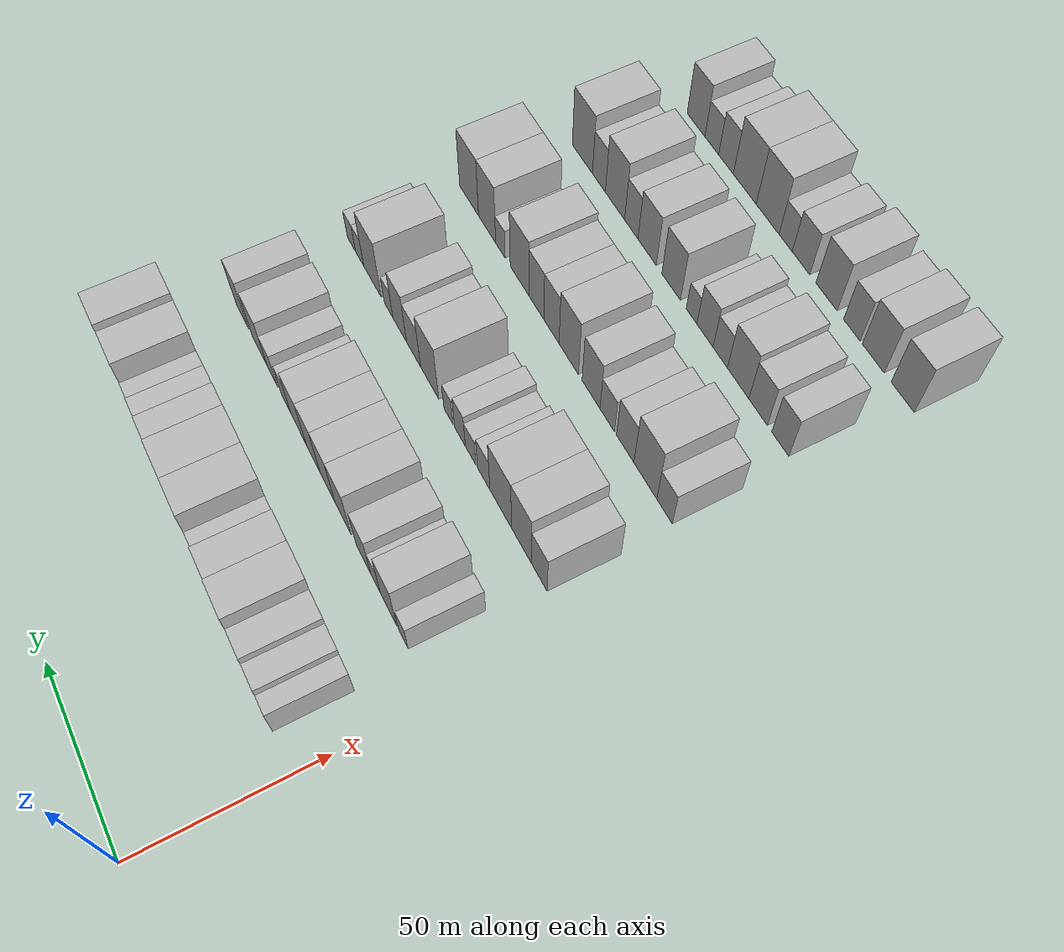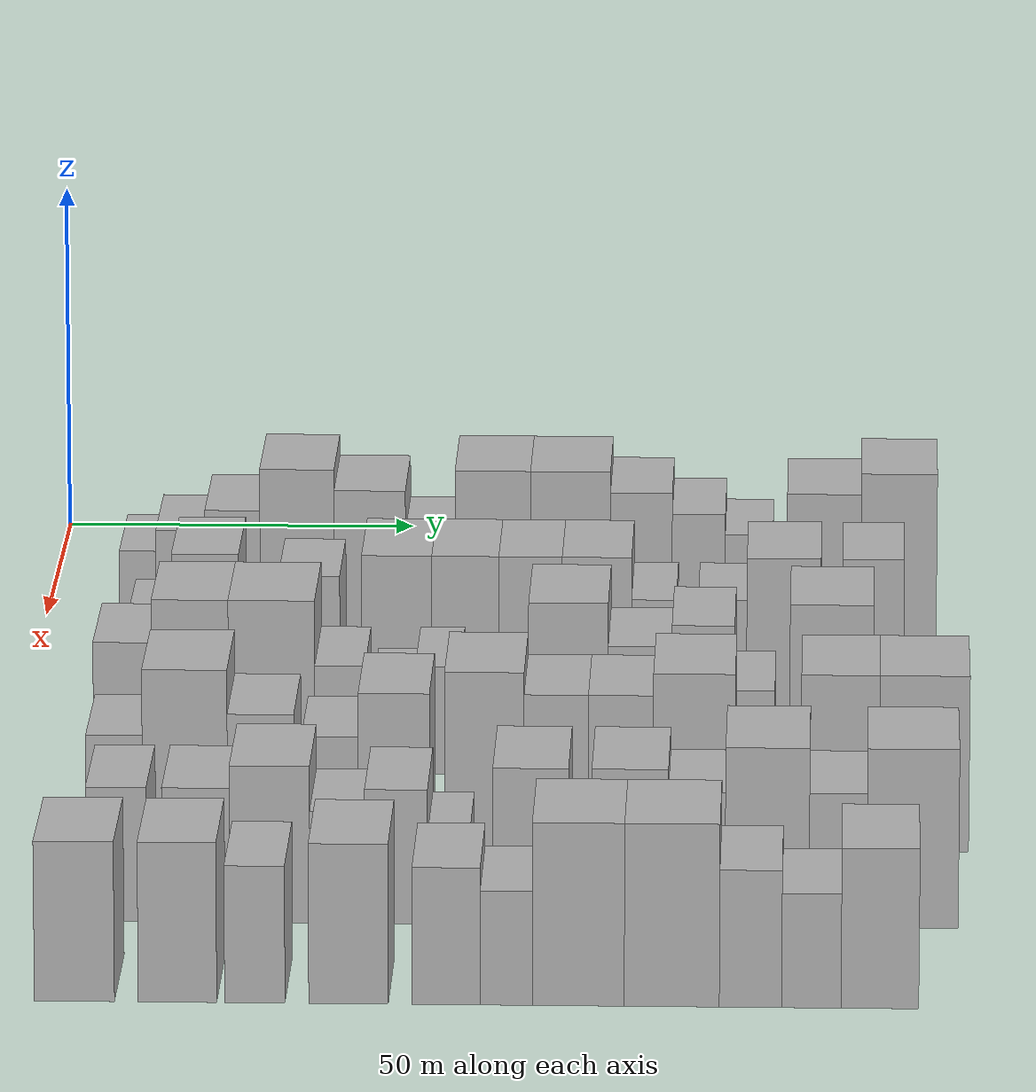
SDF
<sdf version="1.6">
 <world name="default">
  <model name="building_66">
   <static>1</static>
   <pose>50.0000 13.4667 0 0.000000 0.000000 0.000000</pose>
   <link name="link">
    <pose>0 0 6.00 0 0 0</pose>
    <collision name="collision"><geometry><box><size>20.0000 5.1343 12.0000</size></box></geometry></collision>
    <visual name="visual">
     <cast_shadows>0</cast_shadows>
     <geometry><box><size>20.0000 5.1343 12.0000</size></box></geometry>
     <material>
      <script>
       <uri>model://HANNAS_wall/materials/scripts</uri>
       <uri>model://HANNAS_wall/materials/textures</uri>
       <name>vrc/HANNAS_wall</name>
      </script>
     </material>
    </visual>
   </link>
  </model>
  <model name="building_67">
   <static>1</static>
   <pose>50.0000 19.4981 0 0.000000 0.000000 0.000000</pose>
   <link name="link">
    <pose>0 0 7.50 0 0 0</pose>
    <collision name="collision"><geometry><box><size>20.0000 6.9286 15.0000</size></box></geometry></collision>
    <visual name="visual">
     <cast_shadows>0</cast_shadows>
     <geometry><box><size>20.0000 6.9286 15.0000</size></box></geometry>
     <material>
      <script>
       <uri>model://HANNAS_wall/materials/scripts</uri>
       <uri>model://HANNAS_wall/materials/textures</uri>
       <name>vrc/HANNAS_wall</name>
      </script>
     </material>
    </visual>
   </link>
  </model>
  <model name="building_68">
   <static>1</static>
   <pose>50.0000 26.8272 0 0.000000 0.000000 0.000000</pose>
   <link name="link">
    <pose>0 0 9.00 0 0 0</pose>
    <collision name="collision"><geometry><box><size>20.0000 7.7295 18.0000</size></box></geometry></collision>
    <visual name="visual">
     <cast_shadows>0</cast_shadows>
     <geometry><box><size>20.0000 7.7295 18.0000</size></box></geometry>
     <material>
      <script>
       <uri>model://HANNAS_wall/materials/scripts</uri>
       <uri>model://HANNAS_wall/materials/textures</uri>
       <name>vrc/HANNAS_wall</name>
      </script>
     </material>
    </visual>
   </link>
  </model>
  <model name="building_69">
   <static>1</static>
   <pose>50.0000 35.9071 0 0.000000 0.000000 0.000000</pose>
   <link name="link">
    <pose>0 0 12.00 0 0 0</pose>
    <collision name="collision"><geometry><box><size>20.0000 10.4304 24.0000</size></box></geometry></collision>
    <visual name="visual">
     <cast_shadows>0</cast_shadows>
     <geometry><box><size>20.0000 10.4304 24.0000</size></box></geometry>
     <material>
      <script>
       <uri>model://HANNAS_wall/materials/scripts</uri>
       <uri>model://HANNAS_wall/materials/textures</uri>
       <name>vrc/HANNAS_wall</name>
      </script>
     </material>
    </visual>
   </link>
  </model>
  <model name="building_70">
   <static>1</static>
   <pose>50.0000 46.1230 0 0.000000 0.000000 0.000000</pose>
   <link name="link">
    <pose>0 0 10.50 0 0 0</pose>
    <collision name="collision"><geometry><box><size>20.0000 10.0013 21.0000</size></box></geometry></collision>
    <visual name="visual">
     <cast_shadows>0</cast_shadows>
     <geometry><box><size>20.0000 10.0013 21.0000</size></box></geometry>
     <material>
      <script>
       <uri>model://HANNAS_wall/materials/scripts</uri>
       <uri>model://HANNAS_wall/materials/textures</uri>
       <name>vrc/HANNAS_wall</name>
      </script>
     </material>
    </visual>
   </link>
  </model>
  <model name="building_71">
   <static>1</static>
   <pose>50.0000 54.6129 0 0.000000 0.000000 0.000000</pose>
   <link name="link">
    <pose>0 0 7.50 0 0 0</pose>
    <collision name="collision"><geometry><box><size>20.0000 6.9785 15.0000</size></box></geometry></collision>
    <visual name="visual">
     <cast_shadows>0</cast_shadows>
     <geometry><box><size>20.0000 6.9785 15.0000</size></box></geometry>
     <material>
      <script>
       <uri>model://HANNAS_wall/materials/scripts</uri>
       <uri>model://HANNAS_wall/materials/textures</uri>
       <name>vrc/HANNAS_wall</name>
      </script>
     </material>
    </visual>
   </link>
  </model>
  <model name="building_72">
   <static>1</static>
   <pose>50.0000 63.3896 0 0.000000 0.000000 0.000000</pose>
   <link name="link">
    <pose>0 0 12.00 0 0 0</pose>
    <collision name="collision"><geometry><box><size>20.0000 10.5749 24.0000</size></box></geometry></collision>
    <visual name="visual">
     <cast_shadows>0</cast_shadows>
     <geometry><box><size>20.0000 10.5749 24.0000</size></box></geometry>
     <material>
      <script>
       <uri>model://HANNAS_wall/materials/scripts</uri>
       <uri>model://HANNAS_wall/materials/textures</uri>
       <name>vrc/HANNAS_wall</name>
      </script>
     </material>
    </visual>
   </link>
  </model>
  <model name="building_73">
   <static>1</static>
   <pose>50.0000 74.2864 0 0.000000 0.000000 0.000000</pose>
   <link name="link">
    <pose>0 0 12.00 0 0 0</pose>
    <collision name="collision"><geometry><box><size>20.0000 11.2187 24.0000</size></box></geometry></collision>
    <visual name="visual">
     <cast_shadows>0</cast_shadows>
     <geometry><box><size>20.0000 11.2187 24.0000</size></box></geometry>
     <material>
      <script>
       <uri>model://HANNAS_wall/materials/scripts</uri>
       <uri>model://HANNAS_wall/materials/textures</uri>
       <name>vrc/HANNAS_wall</name>
      </script>
     </material>
    </visual>
   </link>
  </model>
  <model name="building_74">
   <static>1</static>
   <pose>50.0000 84.2285 0 0.000000 0.000000 0.000000</pose>
   <link name="link">
    <pose>0 0 10.50 0 0 0</pose>
    <collision name="collision"><geometry><box><size>20.0000 8.6655 21.0000</size></box></geometry></collision>
    <visual name="visual">
     <cast_shadows>0</cast_shadows>
     <geometry><box><size>20.0000 8.6655 21.0000</size></box></geometry>
     <material>
      <script>
       <uri>model://HANNAS_wall/materials/scripts</uri>
       <uri>model://HANNAS_wall/materials/textures</uri>
       <name>vrc/HANNAS_wall</name>
      </script>
     </material>
    </visual>
   </link>
  </model>
  <model name="building_75">
   <static>1</static>
   <pose>50.0000 92.2846 0 0.000000 0.000000 0.000000</pose>
   <link name="link">
    <pose>0 0 9.00 0 0 0</pose>
    <collision name="collision"><geometry><box><size>20.0000 7.4467 18.0000</size></box></geometry></collision>
    <visual name="visual">
     <cast_shadows>0</cast_shadows>
     <geometry><box><size>20.0000 7.4467 18.0000</size></box></geometry>
     <material>
      <script>
       <uri>model://HANNAS_wall/materials/scripts</uri>
       <uri>model://HANNAS_wall/materials/textures</uri>
       <name>vrc/HANNAS_wall</name>
      </script>
     </material>
    </visual>
   </link>
  </model>
  <model name="building_76">
   <static>1</static>
   <pose>50.0000 99.3456 0 0.000000 0.000000 0.000000</pose>
   <link name="link">
    <pose>0 0 7.50 0 0 0</pose>
    <collision name="collision"><geometry><box><size>20.0000 6.6754 15.0000</size></box></geometry></collision>
    <visual name="visual">
     <cast_shadows>0</cast_shadows>
     <geometry><box><size>20.0000 6.6754 15.0000</size></box></geometry>
     <material>
      <script>
       <uri>model://HANNAS_wall/materials/scripts</uri>
       <uri>model://HANNAS_wall/materials/textures</uri>
       <name>vrc/HANNAS_wall</name>
      </script>
     </material>
    </visual>
   </link>
  </model>
  <model name="building_77">
   <static>1</static>
   <pose>50.0000 109.8827 0 0.000000 0.000000 0.000000</pose>
   <link name="link">
    <pose>0 0 10.50 0 0 0</pose>
    <collision name="collision"><geometry><box><size>20.0000 10.3987 21.0000</size></box></geometry></collision>
    <visual name="visual">
     <cast_shadows>0</cast_shadows>
     <geometry><box><size>20.0000 10.3987 21.0000</size></box></geometry>
     <material>
      <script>
       <uri>model://HANNAS_wall/materials/scripts</uri>
       <uri>model://HANNAS_wall/materials/textures</uri>
       <name>vrc/HANNAS_wall</name>
      </script>
     </material>
    </visual>
   </link>
  </model>
  <model name="building_78">
   <static>1</static>
   <pose>50.0000 120.3677 0 0.000000 0.000000 0.000000</pose>
   <link name="link">
    <pose>0 0 12.00 0 0 0</pose>
    <collision name="collision"><geometry><box><size>20.0000 10.5713 24.0000</size></box></geometry></collision>
    <visual name="visual">
     <cast_shadows>0</cast_shadows>
     <geometry><box><size>20.0000 10.5713 24.0000</size></box></geometry>
     <material>
      <script>
       <uri>model://HANNAS_wall/materials/scripts</uri>
       <uri>model://HANNAS_wall/materials/textures</uri>
       <name>vrc/HANNAS_wall</name>
      </script>
     </material>
    </visual>
   </link>
  </model>
  <model name="building_190">
   <static>1</static>
   <pose>85.0000 16.7257 0 0.000000 0.000000 0.000000</pose>
   <link name="link">
    <pose>0 0 6.00 0 0 0</pose>
    <collision name="collision"><geometry><box><size>20.0000 5.0994 12.0000</size></box></geometry></collision>
    <visual name="visual">
     <cast_shadows>0</cast_shadows>
     <geometry><box><size>20.0000 5.0994 12.0000</size></box></geometry>
     <material>
      <script>
       <uri>model://HANNAS_wall/materials/scripts</uri>
       <uri>model://HANNAS_wall/materials/textures</uri>
       <name>vrc/HANNAS_wall</name>
      </script>
     </material>
    </visual>
   </link>
  </model>
  <model name="building_191">
   <static>1</static>
   <pose>85.0000 24.8939 0 0.000000 0.000000 0.000000</pose>
   <link name="link">
    <pose>0 0 10.50 0 0 0</pose>
    <collision name="collision"><geometry><box><size>20.0000 9.2371 21.0000</size></box></geometry></collision>
    <visual name="visual">
     <cast_shadows>0</cast_shadows>
     <geometry><box><size>20.0000 9.2371 21.0000</size></box></geometry>
     <material>
      <script>
       <uri>model://HANNAS_wall/materials/scripts</uri>
       <uri>model://HANNAS_wall/materials/textures</uri>
       <name>vrc/HANNAS_wall</name>
      </script>
     </material>
    </visual>
   </link>
  </model>
  <model name="building_192">
   <static>1</static>
   <pose>85.0000 32.2383 0 0.000000 0.000000 0.000000</pose>
   <link name="link">
    <pose>0 0 6.00 0 0 0</pose>
    <collision name="collision"><geometry><box><size>20.0000 5.4516 12.0000</size></box></geometry></collision>
    <visual name="visual">
     <cast_shadows>0</cast_shadows>
     <geometry><box><size>20.0000 5.4516 12.0000</size></box></geometry>
     <material>
      <script>
       <uri>model://HANNAS_wall/materials/scripts</uri>
       <uri>model://HANNAS_wall/materials/textures</uri>
       <name>vrc/HANNAS_wall</name>
      </script>
     </material>
    </visual>
   </link>
  </model>
  <model name="building_193">
   <static>1</static>
   <pose>85.0000 39.1907 0 0.000000 0.000000 0.000000</pose>
   <link name="link">
    <pose>0 0 9.00 0 0 0</pose>
    <collision name="collision"><geometry><box><size>20.0000 8.4532 18.0000</size></box></geometry></collision>
    <visual name="visual">
     <cast_shadows>0</cast_shadows>
     <geometry><box><size>20.0000 8.4532 18.0000</size></box></geometry>
     <material>
      <script>
       <uri>model://HANNAS_wall/materials/scripts</uri>
       <uri>model://HANNAS_wall/materials/textures</uri>
       <name>vrc/HANNAS_wall</name>
      </script>
     </material>
    </visual>
   </link>
  </model>
  <model name="building_194">
   <static>1</static>
   <pose>85.0000 51.2417 0 0.000000 0.000000 0.000000</pose>
   <link name="link">
    <pose>0 0 10.50 0 0 0</pose>
    <collision name="collision"><geometry><box><size>20.0000 9.6488 21.0000</size></box></geometry></collision>
    <visual name="visual">
     <cast_shadows>0</cast_shadows>
     <geometry><box><size>20.0000 9.6488 21.0000</size></box></geometry>
     <material>
      <script>
       <uri>model://HANNAS_wall/materials/scripts</uri>
       <uri>model://HANNAS_wall/materials/textures</uri>
       <name>vrc/HANNAS_wall</name>
      </script>
     </material>
    </visual>
   </link>
  </model>
  <model name="building_195">
   <static>1</static>
   <pose>85.0000 60.6715 0 0.000000 0.000000 0.000000</pose>
   <link name="link">
    <pose>0 0 10.50 0 0 0</pose>
    <collision name="collision"><geometry><box><size>20.0000 9.2108 21.0000</size></box></geometry></collision>
    <visual name="visual">
     <cast_shadows>0</cast_shadows>
     <geometry><box><size>20.0000 9.2108 21.0000</size></box></geometry>
     <material>
      <script>
       <uri>model://HANNAS_wall/materials/scripts</uri>
       <uri>model://HANNAS_wall/materials/textures</uri>
       <name>vrc/HANNAS_wall</name>
      </script>
     </material>
    </visual>
   </link>
  </model>
  <model name="building_196">
   <static>1</static>
   <pose>85.0000 69.6361 0 0.000000 0.000000 0.000000</pose>
   <link name="link">
    <pose>0 0 10.50 0 0 0</pose>
    <collision name="collision"><geometry><box><size>20.0000 8.7184 21.0000</size></box></geometry></collision>
    <visual name="visual">
     <cast_shadows>0</cast_shadows>
     <geometry><box><size>20.0000 8.7184 21.0000</size></box></geometry>
     <material>
      <script>
       <uri>model://HANNAS_wall/materials/scripts</uri>
       <uri>model://HANNAS_wall/materials/textures</uri>
       <name>vrc/HANNAS_wall</name>
      </script>
     </material>
    </visual>
   </link>
  </model>
  <model name="building_197">
   <static>1</static>
   <pose>85.0000 78.7616 0 0.000000 0.000000 0.000000</pose>
   <link name="link">
    <pose>0 0 10.50 0 0 0</pose>
    <collision name="collision"><geometry><box><size>20.0000 9.5325 21.0000</size></box></geometry></collision>
    <visual name="visual">
     <cast_shadows>0</cast_shadows>
     <geometry><box><size>20.0000 9.5325 21.0000</size></box></geometry>
     <material>
      <script>
       <uri>model://HANNAS_wall/materials/scripts</uri>
       <uri>model://HANNAS_wall/materials/textures</uri>
       <name>vrc/HANNAS_wall</name>
      </script>
     </material>
    </visual>
   </link>
  </model>
  <model name="building_198">
   <static>1</static>
   <pose>85.0000 86.6030 0 0.000000 0.000000 0.000000</pose>
   <link name="link">
    <pose>0 0 7.50 0 0 0</pose>
    <collision name="collision"><geometry><box><size>20.0000 6.1503 15.0000</size></box></geometry></collision>
    <visual name="visual">
     <cast_shadows>0</cast_shadows>
     <geometry><box><size>20.0000 6.1503 15.0000</size></box></geometry>
     <material>
      <script>
       <uri>model://HANNAS_wall/materials/scripts</uri>
       <uri>model://HANNAS_wall/materials/textures</uri>
       <name>vrc/HANNAS_wall</name>
      </script>
     </material>
    </visual>
   </link>
  </model>
  <model name="building_199">
   <static>1</static>
   <pose>85.0000 96.0213 0 0.000000 0.000000 0.000000</pose>
   <link name="link">
    <pose>0 0 7.50 0 0 0</pose>
    <collision name="collision"><geometry><box><size>20.0000 6.6864 15.0000</size></box></geometry></collision>
    <visual name="visual">
     <cast_shadows>0</cast_shadows>
     <geometry><box><size>20.0000 6.6864 15.0000</size></box></geometry>
     <material>
      <script>
       <uri>model://HANNAS_wall/materials/scripts</uri>
       <uri>model://HANNAS_wall/materials/textures</uri>
       <name>vrc/HANNAS_wall</name>
      </script>
     </material>
    </visual>
   </link>
  </model>
  <model name="building_200">
   <static>1</static>
   <pose>85.0000 104.4423 0 0.000000 0.000000 0.000000</pose>
   <link name="link">
    <pose>0 0 10.50 0 0 0</pose>
    <collision name="collision"><geometry><box><size>20.0000 10.1555 21.0000</size></box></geometry></collision>
    <visual name="visual">
     <cast_shadows>0</cast_shadows>
     <geometry><box><size>20.0000 10.1555 21.0000</size></box></geometry>
     <material>
      <script>
       <uri>model://HANNAS_wall/materials/scripts</uri>
       <uri>model://HANNAS_wall/materials/textures</uri>
       <name>vrc/HANNAS_wall</name>
      </script>
     </material>
    </visual>
   </link>
  </model>
  <model name="building_201">
   <static>1</static>
   <pose>85.0000 116.7244 0 0.000000 0.000000 0.000000</pose>
   <link name="link">
    <pose>0 0 10.50 0 0 0</pose>
    <collision name="collision"><geometry><box><size>20.0000 8.4089 21.0000</size></box></geometry></collision>
    <visual name="visual">
     <cast_shadows>0</cast_shadows>
     <geometry><box><size>20.0000 8.4089 21.0000</size></box></geometry>
     <material>
      <script>
       <uri>model://HANNAS_wall/materials/scripts</uri>
       <uri>model://HANNAS_wall/materials/textures</uri>
       <name>vrc/HANNAS_wall</name>
      </script>
     </material>
    </visual>
   </link>
  </model>
  <model name="building_315">
   <static>1</static>
   <pose>120.0000 15.6466 0 0.000000 0.000000 0.000000</pose>
   <link name="link">
    <pose>0 0 9.00 0 0 0</pose>
    <collision name="collision"><geometry><box><size>20.0000 7.9000 18.0000</size></box></geometry></collision>
    <visual name="visual">
     <cast_shadows>0</cast_shadows>
     <geometry><box><size>20.0000 7.9000 18.0000</size></box></geometry>
     <material>
      <script>
       <uri>model://HANNAS_wall/materials/scripts</uri>
       <uri>model://HANNAS_wall/materials/textures</uri>
       <name>vrc/HANNAS_wall</name>
      </script>
     </material>
    </visual>
   </link>
  </model>
  <model name="building_316">
   <static>1</static>
   <pose>120.0000 24.7605 0 0.000000 0.000000 0.000000</pose>
   <link name="link">
    <pose>0 0 12.00 0 0 0</pose>
    <collision name="collision"><geometry><box><size>20.0000 10.3277 24.0000</size></box></geometry></collision>
    <visual name="visual">
     <cast_shadows>0</cast_shadows>
     <geometry><box><size>20.0000 10.3277 24.0000</size></box></geometry>
     <material>
      <script>
       <uri>model://HANNAS_wall/materials/scripts</uri>
       <uri>model://HANNAS_wall/materials/textures</uri>
       <name>vrc/HANNAS_wall</name>
      </script>
     </material>
    </visual>
   </link>
  </model>
  <model name="building_317">
   <static>1</static>
   <pose>120.0000 35.7456 0 0.000000 0.000000 0.000000</pose>
   <link name="link">
    <pose>0 0 12.00 0 0 0</pose>
    <collision name="collision"><geometry><box><size>20.0000 11.6427 24.0000</size></box></geometry></collision>
    <visual name="visual">
     <cast_shadows>0</cast_shadows>
     <geometry><box><size>20.0000 11.6427 24.0000</size></box></geometry>
     <material>
      <script>
       <uri>model://HANNAS_wall/materials/scripts</uri>
       <uri>model://HANNAS_wall/materials/textures</uri>
       <name>vrc/HANNAS_wall</name>
      </script>
     </material>
    </visual>
   </link>
  </model>
  <model name="building_318">
   <static>1</static>
   <pose>120.0000 44.9583 0 0.000000 0.000000 0.000000</pose>
   <link name="link">
    <pose>0 0 7.50 0 0 0</pose>
    <collision name="collision"><geometry><box><size>20.0000 6.7827 15.0000</size></box></geometry></collision>
    <visual name="visual">
     <cast_shadows>0</cast_shadows>
     <geometry><box><size>20.0000 6.7827 15.0000</size></box></geometry>
     <material>
      <script>
       <uri>model://HANNAS_wall/materials/scripts</uri>
       <uri>model://HANNAS_wall/materials/textures</uri>
       <name>vrc/HANNAS_wall</name>
      </script>
     </material>
    </visual>
   </link>
  </model>
  <model name="building_319">
   <static>1</static>
   <pose>120.0000 52.2283 0 0.000000 0.000000 0.000000</pose>
   <link name="link">
    <pose>0 0 6.00 0 0 0</pose>
    <collision name="collision"><geometry><box><size>20.0000 5.7573 12.0000</size></box></geometry></collision>
    <visual name="visual">
     <cast_shadows>0</cast_shadows>
     <geometry><box><size>20.0000 5.7573 12.0000</size></box></geometry>
     <material>
      <script>
       <uri>model://HANNAS_wall/materials/scripts</uri>
       <uri>model://HANNAS_wall/materials/textures</uri>
       <name>vrc/HANNAS_wall</name>
      </script>
     </material>
    </visual>
   </link>
  </model>
  <model name="building_320">
   <static>1</static>
   <pose>120.0000 58.1270 0 0.000000 0.000000 0.000000</pose>
   <link name="link">
    <pose>0 0 7.50 0 0 0</pose>
    <collision name="collision"><geometry><box><size>20.0000 6.0401 15.0000</size></box></geometry></collision>
    <visual name="visual">
     <cast_shadows>0</cast_shadows>
     <geometry><box><size>20.0000 6.0401 15.0000</size></box></geometry>
     <material>
      <script>
       <uri>model://HANNAS_wall/materials/scripts</uri>
       <uri>model://HANNAS_wall/materials/textures</uri>
       <name>vrc/HANNAS_wall</name>
      </script>
     </material>
    </visual>
   </link>
  </model>
  <model name="building_321">
   <static>1</static>
   <pose>120.0000 64.7448 0 0.000000 0.000000 0.000000</pose>
   <link name="link">
    <pose>0 0 6.00 0 0 0</pose>
    <collision name="collision"><geometry><box><size>20.0000 5.1953 12.0000</size></box></geometry></collision>
    <visual name="visual">
     <cast_shadows>0</cast_shadows>
     <geometry><box><size>20.0000 5.1953 12.0000</size></box></geometry>
     <material>
      <script>
       <uri>model://HANNAS_wall/materials/scripts</uri>
       <uri>model://HANNAS_wall/materials/textures</uri>
       <name>vrc/HANNAS_wall</name>
      </script>
     </material>
    </visual>
   </link>
  </model>
  <model name="building_322">
   <static>1</static>
   <pose>120.0000 75.6926 0 0.000000 0.000000 0.000000</pose>
   <link name="link">
    <pose>0 0 12.00 0 0 0</pose>
    <collision name="collision"><geometry><box><size>20.0000 10.7003 24.0000</size></box></geometry></collision>
    <visual name="visual">
     <cast_shadows>0</cast_shadows>
     <geometry><box><size>20.0000 10.7003 24.0000</size></box></geometry>
     <material>
      <script>
       <uri>model://HANNAS_wall/materials/scripts</uri>
       <uri>model://HANNAS_wall/materials/textures</uri>
       <name>vrc/HANNAS_wall</name>
      </script>
     </material>
    </visual>
   </link>
  </model>
  <model name="building_323">
   <static>1</static>
   <pose>120.0000 85.3341 0 0.000000 0.000000 0.000000</pose>
   <link name="link">
    <pose>0 0 9.00 0 0 0</pose>
    <collision name="collision"><geometry><box><size>20.0000 8.5829 18.0000</size></box></geometry></collision>
    <visual name="visual">
     <cast_shadows>0</cast_shadows>
     <geometry><box><size>20.0000 8.5829 18.0000</size></box></geometry>
     <material>
      <script>
       <uri>model://HANNAS_wall/materials/scripts</uri>
       <uri>model://HANNAS_wall/materials/textures</uri>
       <name>vrc/HANNAS_wall</name>
      </script>
     </material>
    </visual>
   </link>
  </model>
  <model name="building_324">
   <static>1</static>
   <pose>120.0000 93.8354 0 0.000000 0.000000 0.000000</pose>
   <link name="link">
    <pose>0 0 10.50 0 0 0</pose>
    <collision name="collision"><geometry><box><size>20.0000 8.4196 21.0000</size></box></geometry></collision>
    <visual name="visual">
     <cast_shadows>0</cast_shadows>
     <geometry><box><size>20.0000 8.4196 21.0000</size></box></geometry>
     <material>
      <script>
       <uri>model://HANNAS_wall/materials/scripts</uri>
       <uri>model://HANNAS_wall/materials/textures</uri>
       <name>vrc/HANNAS_wall</name>
      </script>
     </material>
    </visual>
   </link>
  </model>
  <model name="building_325">
   <static>1</static>
   <pose>120.0000 100.7578 0 0.000000 0.000000 0.000000</pose>
   <link name="link">
    <pose>0 0 6.00 0 0 0</pose>
    <collision name="collision"><geometry><box><size>20.0000 5.4252 12.0000</size></box></geometry></collision>
    <visual name="visual">
     <cast_shadows>0</cast_shadows>
     <geometry><box><size>20.0000 5.4252 12.0000</size></box></geometry>
     <material>
      <script>
       <uri>model://HANNAS_wall/materials/scripts</uri>
       <uri>model://HANNAS_wall/materials/textures</uri>
       <name>vrc/HANNAS_wall</name>
      </script>
     </material>
    </visual>
   </link>
  </model>
  <model name="building_326">
   <static>1</static>
   <pose>120.0000 111.0955 0 0.000000 0.000000 0.000000</pose>
   <link name="link">
    <pose>0 0 12.00 0 0 0</pose>
    <collision name="collision"><geometry><box><size>20.0000 11.2502 24.0000</size></box></geometry></collision>
    <visual name="visual">
     <cast_shadows>0</cast_shadows>
     <geometry><box><size>20.0000 11.2502 24.0000</size></box></geometry>
     <material>
      <script>
       <uri>model://HANNAS_wall/materials/scripts</uri>
       <uri>model://HANNAS_wall/materials/textures</uri>
       <name>vrc/HANNAS_wall</name>
      </script>
     </material>
    </visual>
   </link>
  </model>
  <model name="building_327">
   <static>1</static>
   <pose>120.0000 119.4386 0 0.000000 0.000000 0.000000</pose>
   <link name="link">
    <pose>0 0 6.00 0 0 0</pose>
    <collision name="collision"><geometry><box><size>20.0000 5.4361 12.0000</size></box></geometry></collision>
    <visual name="visual">
     <cast_shadows>0</cast_shadows>
     <geometry><box><size>20.0000 5.4361 12.0000</size></box></geometry>
     <material>
      <script>
       <uri>model://HANNAS_wall/materials/scripts</uri>
       <uri>model://HANNAS_wall/materials/textures</uri>
       <name>vrc/HANNAS_wall</name>
      </script>
     </material>
    </visual>
   </link>
  </model>
  <model name="building_328">
   <static>1</static>
   <pose>120.0000 124.8402 0 0.000000 0.000000 0.000000</pose>
   <link name="link">
    <pose>0 0 6.00 0 0 0</pose>
    <collision name="collision"><geometry><box><size>20.0000 5.3671 12.0000</size></box></geometry></collision>
    <visual name="visual">
     <cast_shadows>0</cast_shadows>
     <geometry><box><size>20.0000 5.3671 12.0000</size></box></geometry>
     <material>
      <script>
       <uri>model://HANNAS_wall/materials/scripts</uri>
       <uri>model://HANNAS_wall/materials/textures</uri>
       <name>vrc/HANNAS_wall</name>
      </script>
     </material>
    </visual>
   </link>
  </model>
  <model name="building_444">
   <static>1</static>
   <pose>155.0000 16.6789 0 0.000000 0.000000 0.000000</pose>
   <link name="link">
    <pose>0 0 7.50 0 0 0</pose>
    <collision name="collision"><geometry><box><size>20.0000 7.4378 15.0000</size></box></geometry></collision>
    <visual name="visual">
     <cast_shadows>0</cast_shadows>
     <geometry><box><size>20.0000 7.4378 15.0000</size></box></geometry>
     <material>
      <script>
       <uri>model://HANNAS_wall/materials/scripts</uri>
       <uri>model://HANNAS_wall/materials/textures</uri>
       <name>vrc/HANNAS_wall</name>
      </script>
     </material>
    </visual>
   </link>
  </model>
  <model name="building_445">
   <static>1</static>
   <pose>155.0000 26.0057 0 0.000000 0.000000 0.000000</pose>
   <link name="link">
    <pose>0 0 12.00 0 0 0</pose>
    <collision name="collision"><geometry><box><size>20.0000 11.2159 24.0000</size></box></geometry></collision>
    <visual name="visual">
     <cast_shadows>0</cast_shadows>
     <geometry><box><size>20.0000 11.2159 24.0000</size></box></geometry>
     <material>
      <script>
       <uri>model://HANNAS_wall/materials/scripts</uri>
       <uri>model://HANNAS_wall/materials/textures</uri>
       <name>vrc/HANNAS_wall</name>
      </script>
     </material>
    </visual>
   </link>
  </model>
  <model name="building_446">
   <static>1</static>
   <pose>155.0000 36.0008 0 0.000000 0.000000 0.000000</pose>
   <link name="link">
    <pose>0 0 9.00 0 0 0</pose>
    <collision name="collision"><geometry><box><size>20.0000 8.7744 18.0000</size></box></geometry></collision>
    <visual name="visual">
     <cast_shadows>0</cast_shadows>
     <geometry><box><size>20.0000 8.7744 18.0000</size></box></geometry>
     <material>
      <script>
       <uri>model://HANNAS_wall/materials/scripts</uri>
       <uri>model://HANNAS_wall/materials/textures</uri>
       <name>vrc/HANNAS_wall</name>
      </script>
     </material>
    </visual>
   </link>
  </model>
  <model name="building_447">
   <static>1</static>
   <pose>155.0000 45.1333 0 0.000000 0.000000 0.000000</pose>
   <link name="link">
    <pose>0 0 7.50 0 0 0</pose>
    <collision name="collision"><geometry><box><size>20.0000 7.4905 15.0000</size></box></geometry></collision>
    <visual name="visual">
     <cast_shadows>0</cast_shadows>
     <geometry><box><size>20.0000 7.4905 15.0000</size></box></geometry>
     <material>
      <script>
       <uri>model://HANNAS_wall/materials/scripts</uri>
       <uri>model://HANNAS_wall/materials/textures</uri>
       <name>vrc/HANNAS_wall</name>
      </script>
     </material>
    </visual>
   </link>
  </model>
  <model name="building_448">
   <static>1</static>
   <pose>155.0000 53.5653 0 0.000000 0.000000 0.000000</pose>
   <link name="link">
    <pose>0 0 10.50 0 0 0</pose>
    <collision name="collision"><geometry><box><size>20.0000 9.3736 21.0000</size></box></geometry></collision>
    <visual name="visual">
     <cast_shadows>0</cast_shadows>
     <geometry><box><size>20.0000 9.3736 21.0000</size></box></geometry>
     <material>
      <script>
       <uri>model://HANNAS_wall/materials/scripts</uri>
       <uri>model://HANNAS_wall/materials/textures</uri>
       <name>vrc/HANNAS_wall</name>
      </script>
     </material>
    </visual>
   </link>
  </model>
  <model name="building_449">
   <static>1</static>
   <pose>155.0000 65.4856 0 0.000000 0.000000 0.000000</pose>
   <link name="link">
    <pose>0 0 12.00 0 0 0</pose>
    <collision name="collision"><geometry><box><size>20.0000 10.4669 24.0000</size></box></geometry></collision>
    <visual name="visual">
     <cast_shadows>0</cast_shadows>
     <geometry><box><size>20.0000 10.4669 24.0000</size></box></geometry>
     <material>
      <script>
       <uri>model://HANNAS_wall/materials/scripts</uri>
       <uri>model://HANNAS_wall/materials/textures</uri>
       <name>vrc/HANNAS_wall</name>
      </script>
     </material>
    </visual>
   </link>
  </model>
  <model name="building_450">
   <static>1</static>
   <pose>155.0000 74.9489 0 0.000000 0.000000 0.000000</pose>
   <link name="link">
    <pose>0 0 10.50 0 0 0</pose>
    <collision name="collision"><geometry><box><size>20.0000 8.4598 21.0000</size></box></geometry></collision>
    <visual name="visual">
     <cast_shadows>0</cast_shadows>
     <geometry><box><size>20.0000 8.4598 21.0000</size></box></geometry>
     <material>
      <script>
       <uri>model://HANNAS_wall/materials/scripts</uri>
       <uri>model://HANNAS_wall/materials/textures</uri>
       <name>vrc/HANNAS_wall</name>
      </script>
     </material>
    </visual>
   </link>
  </model>
  <model name="building_451">
   <static>1</static>
   <pose>155.0000 83.4518 0 0.000000 0.000000 0.000000</pose>
   <link name="link">
    <pose>0 0 10.50 0 0 0</pose>
    <collision name="collision"><geometry><box><size>20.0000 8.5461 21.0000</size></box></geometry></collision>
    <visual name="visual">
     <cast_shadows>0</cast_shadows>
     <geometry><box><size>20.0000 8.5461 21.0000</size></box></geometry>
     <material>
      <script>
       <uri>model://HANNAS_wall/materials/scripts</uri>
       <uri>model://HANNAS_wall/materials/textures</uri>
       <name>vrc/HANNAS_wall</name>
      </script>
     </material>
    </visual>
   </link>
  </model>
  <model name="building_452">
   <static>1</static>
   <pose>155.0000 93.0954 0 0.000000 0.000000 0.000000</pose>
   <link name="link">
    <pose>0 0 12.00 0 0 0</pose>
    <collision name="collision"><geometry><box><size>20.0000 10.7409 24.0000</size></box></geometry></collision>
    <visual name="visual">
     <cast_shadows>0</cast_shadows>
     <geometry><box><size>20.0000 10.7409 24.0000</size></box></geometry>
     <material>
      <script>
       <uri>model://HANNAS_wall/materials/scripts</uri>
       <uri>model://HANNAS_wall/materials/textures</uri>
       <name>vrc/HANNAS_wall</name>
      </script>
     </material>
    </visual>
   </link>
  </model>
  <model name="building_453">
   <static>1</static>
   <pose>155.0000 104.3154 0 0.000000 0.000000 0.000000</pose>
   <link name="link">
    <pose>0 0 6.00 0 0 0</pose>
    <collision name="collision"><geometry><box><size>20.0000 5.6992 12.0000</size></box></geometry></collision>
    <visual name="visual">
     <cast_shadows>0</cast_shadows>
     <geometry><box><size>20.0000 5.6992 12.0000</size></box></geometry>
     <material>
      <script>
       <uri>model://HANNAS_wall/materials/scripts</uri>
       <uri>model://HANNAS_wall/materials/textures</uri>
       <name>vrc/HANNAS_wall</name>
      </script>
     </material>
    </visual>
   </link>
  </model>
  <model name="building_454">
   <static>1</static>
   <pose>155.0000 112.3399 0 0.000000 0.000000 0.000000</pose>
   <link name="link">
    <pose>0 0 12.00 0 0 0</pose>
    <collision name="collision"><geometry><box><size>20.0000 10.3497 24.0000</size></box></geometry></collision>
    <visual name="visual">
     <cast_shadows>0</cast_shadows>
     <geometry><box><size>20.0000 10.3497 24.0000</size></box></geometry>
     <material>
      <script>
       <uri>model://HANNAS_wall/materials/scripts</uri>
       <uri>model://HANNAS_wall/materials/textures</uri>
       <name>vrc/HANNAS_wall</name>
      </script>
     </material>
    </visual>
   </link>
  </model>
  <model name="building_455">
   <static>1</static>
   <pose>155.0000 123.3935 0 0.000000 0.000000 0.000000</pose>
   <link name="link">
    <pose>0 0 12.00 0 0 0</pose>
    <collision name="collision"><geometry><box><size>20.0000 11.7575 24.0000</size></box></geometry></collision>
    <visual name="visual">
     <cast_shadows>0</cast_shadows>
     <geometry><box><size>20.0000 11.7575 24.0000</size></box></geometry>
     <material>
      <script>
       <uri>model://HANNAS_wall/materials/scripts</uri>
       <uri>model://HANNAS_wall/materials/textures</uri>
       <name>vrc/HANNAS_wall</name>
      </script>
     </material>
    </visual>
   </link>
  </model>
  <model name="building_561">
   <static>1</static>
   <pose>190.0000 19.1042 0 0.000000 0.000000 0.000000</pose>
   <link name="link">
    <pose>0 0 9.00 0 0 0</pose>
    <collision name="collision"><geometry><box><size>20.0000 7.8238 18.0000</size></box></geometry></collision>
    <visual name="visual">
     <cast_shadows>0</cast_shadows>
     <geometry><box><size>20.0000 7.8238 18.0000</size></box></geometry>
     <material>
      <script>
       <uri>model://HANNAS_wall/materials/scripts</uri>
       <uri>model://HANNAS_wall/materials/textures</uri>
       <name>vrc/HANNAS_wall</name>
      </script>
     </material>
    </visual>
   </link>
  </model>
  <model name="building_562">
   <static>1</static>
   <pose>190.0000 29.3748 0 0.000000 0.000000 0.000000</pose>
   <link name="link">
    <pose>0 0 9.00 0 0 0</pose>
    <collision name="collision"><geometry><box><size>20.0000 8.7175 18.0000</size></box></geometry></collision>
    <visual name="visual">
     <cast_shadows>0</cast_shadows>
     <geometry><box><size>20.0000 8.7175 18.0000</size></box></geometry>
     <material>
      <script>
       <uri>model://HANNAS_wall/materials/scripts</uri>
       <uri>model://HANNAS_wall/materials/textures</uri>
       <name>vrc/HANNAS_wall</name>
      </script>
     </material>
    </visual>
   </link>
  </model>
  <model name="building_563">
   <static>1</static>
   <pose>190.0000 38.9020 0 0.000000 0.000000 0.000000</pose>
   <link name="link">
    <pose>0 0 10.50 0 0 0</pose>
    <collision name="collision"><geometry><box><size>20.0000 10.3368 21.0000</size></box></geometry></collision>
    <visual name="visual">
     <cast_shadows>0</cast_shadows>
     <geometry><box><size>20.0000 10.3368 21.0000</size></box></geometry>
     <material>
      <script>
       <uri>model://HANNAS_wall/materials/scripts</uri>
       <uri>model://HANNAS_wall/materials/textures</uri>
       <name>vrc/HANNAS_wall</name>
      </script>
     </material>
    </visual>
   </link>
  </model>
  <model name="building_564">
   <static>1</static>
   <pose>190.0000 47.6112 0 0.000000 0.000000 0.000000</pose>
   <link name="link">
    <pose>0 0 7.50 0 0 0</pose>
    <collision name="collision"><geometry><box><size>20.0000 7.0817 15.0000</size></box></geometry></collision>
    <visual name="visual">
     <cast_shadows>0</cast_shadows>
     <geometry><box><size>20.0000 7.0817 15.0000</size></box></geometry>
     <material>
      <script>
       <uri>model://HANNAS_wall/materials/scripts</uri>
       <uri>model://HANNAS_wall/materials/textures</uri>
       <name>vrc/HANNAS_wall</name>
      </script>
     </material>
    </visual>
   </link>
  </model>
  <model name="building_565">
   <static>1</static>
   <pose>190.0000 55.2039 0 0.000000 0.000000 0.000000</pose>
   <link name="link">
    <pose>0 0 9.00 0 0 0</pose>
    <collision name="collision"><geometry><box><size>20.0000 8.1036 18.0000</size></box></geometry></collision>
    <visual name="visual">
     <cast_shadows>0</cast_shadows>
     <geometry><box><size>20.0000 8.1036 18.0000</size></box></geometry>
     <material>
      <script>
       <uri>model://HANNAS_wall/materials/scripts</uri>
       <uri>model://HANNAS_wall/materials/textures</uri>
       <name>vrc/HANNAS_wall</name>
      </script>
     </material>
    </visual>
   </link>
  </model>
  <model name="building_566">
   <static>1</static>
   <pose>190.0000 61.9578 0 0.000000 0.000000 0.000000</pose>
   <link name="link">
    <pose>0 0 6.00 0 0 0</pose>
    <collision name="collision"><geometry><box><size>20.0000 5.4042 12.0000</size></box></geometry></collision>
    <visual name="visual">
     <cast_shadows>0</cast_shadows>
     <geometry><box><size>20.0000 5.4042 12.0000</size></box></geometry>
     <material>
      <script>
       <uri>model://HANNAS_wall/materials/scripts</uri>
       <uri>model://HANNAS_wall/materials/textures</uri>
       <name>vrc/HANNAS_wall</name>
      </script>
     </material>
    </visual>
   </link>
  </model>
  <model name="building_567">
   <static>1</static>
   <pose>190.0000 72.5341 0 0.000000 0.000000 0.000000</pose>
   <link name="link">
    <pose>0 0 10.50 0 0 0</pose>
    <collision name="collision"><geometry><box><size>20.0000 9.7484 21.0000</size></box></geometry></collision>
    <visual name="visual">
     <cast_shadows>0</cast_shadows>
     <geometry><box><size>20.0000 9.7484 21.0000</size></box></geometry>
     <material>
      <script>
       <uri>model://HANNAS_wall/materials/scripts</uri>
       <uri>model://HANNAS_wall/materials/textures</uri>
       <name>vrc/HANNAS_wall</name>
      </script>
     </material>
    </visual>
   </link>
  </model>
  <model name="building_568">
   <static>1</static>
   <pose>190.0000 85.3323 0 0.000000 0.000000 0.000000</pose>
   <link name="link">
    <pose>0 0 10.50 0 0 0</pose>
    <collision name="collision"><geometry><box><size>20.0000 9.8481 21.0000</size></box></geometry></collision>
    <visual name="visual">
     <cast_shadows>0</cast_shadows>
     <geometry><box><size>20.0000 9.8481 21.0000</size></box></geometry>
     <material>
      <script>
       <uri>model://HANNAS_wall/materials/scripts</uri>
       <uri>model://HANNAS_wall/materials/textures</uri>
       <name>vrc/HANNAS_wall</name>
      </script>
     </material>
    </visual>
   </link>
  </model>
  <model name="building_569">
   <static>1</static>
   <pose>190.0000 93.9263 0 0.000000 0.000000 0.000000</pose>
   <link name="link">
    <pose>0 0 9.00 0 0 0</pose>
    <collision name="collision"><geometry><box><size>20.0000 7.3398 18.0000</size></box></geometry></collision>
    <visual name="visual">
     <cast_shadows>0</cast_shadows>
     <geometry><box><size>20.0000 7.3398 18.0000</size></box></geometry>
     <material>
      <script>
       <uri>model://HANNAS_wall/materials/scripts</uri>
       <uri>model://HANNAS_wall/materials/textures</uri>
       <name>vrc/HANNAS_wall</name>
      </script>
     </material>
    </visual>
   </link>
  </model>
  <model name="building_570">
   <static>1</static>
   <pose>190.0000 103.0024 0 0.000000 0.000000 0.000000</pose>
   <link name="link">
    <pose>0 0 12.00 0 0 0</pose>
    <collision name="collision"><geometry><box><size>20.0000 10.8124 24.0000</size></box></geometry></collision>
    <visual name="visual">
     <cast_shadows>0</cast_shadows>
     <geometry><box><size>20.0000 10.8124 24.0000</size></box></geometry>
     <material>
      <script>
       <uri>model://HANNAS_wall/materials/scripts</uri>
       <uri>model://HANNAS_wall/materials/textures</uri>
       <name>vrc/HANNAS_wall</name>
      </script>
     </material>
    </visual>
   </link>
  </model>
  <model name="building_571">
   <static>1</static>
   <pose>190.0000 112.1375 0 0.000000 0.000000 0.000000</pose>
   <link name="link">
    <pose>0 0 9.00 0 0 0</pose>
    <collision name="collision"><geometry><box><size>20.0000 7.4579 18.0000</size></box></geometry></collision>
    <visual name="visual">
     <cast_shadows>0</cast_shadows>
     <geometry><box><size>20.0000 7.4579 18.0000</size></box></geometry>
     <material>
      <script>
       <uri>model://HANNAS_wall/materials/scripts</uri>
       <uri>model://HANNAS_wall/materials/textures</uri>
       <name>vrc/HANNAS_wall</name>
      </script>
     </material>
    </visual>
   </link>
  </model>
  <model name="building_572">
   <static>1</static>
   <pose>190.0000 121.7448 0 0.000000 0.000000 0.000000</pose>
   <link name="link">
    <pose>0 0 12.00 0 0 0</pose>
    <collision name="collision"><geometry><box><size>20.0000 11.7567 24.0000</size></box></geometry></collision>
    <visual name="visual">
     <cast_shadows>0</cast_shadows>
     <geometry><box><size>20.0000 11.7567 24.0000</size></box></geometry>
     <material>
      <script>
       <uri>model://HANNAS_wall/materials/scripts</uri>
       <uri>model://HANNAS_wall/materials/textures</uri>
       <name>vrc/HANNAS_wall</name>
      </script>
     </material>
    </visual>
   </link>
  </model>
  <model name="building_678">
   <static>1</static>
   <pose>225.0000 15.9345 0 0.000000 0.000000 0.000000</pose>
   <link name="link">
    <pose>0 0 10.50 0 0 0</pose>
    <collision name="collision"><geometry><box><size>20.0000 10.1141 21.0000</size></box></geometry></collision>
    <visual name="visual">
     <cast_shadows>0</cast_shadows>
     <geometry><box><size>20.0000 10.1141 21.0000</size></box></geometry>
     <material>
      <script>
       <uri>model://HANNAS_wall/materials/scripts</uri>
       <uri>model://HANNAS_wall/materials/textures</uri>
       <name>vrc/HANNAS_wall</name>
      </script>
     </material>
    </visual>
   </link>
  </model>
  <model name="building_679">
   <static>1</static>
   <pose>225.0000 28.9486 0 0.000000 0.000000 0.000000</pose>
   <link name="link">
    <pose>0 0 10.50 0 0 0</pose>
    <collision name="collision"><geometry><box><size>20.0000 9.9141 21.0000</size></box></geometry></collision>
    <visual name="visual">
     <cast_shadows>0</cast_shadows>
     <geometry><box><size>20.0000 9.9141 21.0000</size></box></geometry>
     <material>
      <script>
       <uri>model://HANNAS_wall/materials/scripts</uri>
       <uri>model://HANNAS_wall/materials/textures</uri>
       <name>vrc/HANNAS_wall</name>
      </script>
     </material>
    </visual>
   </link>
  </model>
  <model name="building_680">
   <static>1</static>
   <pose>225.0000 38.7134 0 0.000000 0.000000 0.000000</pose>
   <link name="link">
    <pose>0 0 9.00 0 0 0</pose>
    <collision name="collision"><geometry><box><size>20.0000 7.6155 18.0000</size></box></geometry></collision>
    <visual name="visual">
     <cast_shadows>0</cast_shadows>
     <geometry><box><size>20.0000 7.6155 18.0000</size></box></geometry>
     <material>
      <script>
       <uri>model://HANNAS_wall/materials/scripts</uri>
       <uri>model://HANNAS_wall/materials/textures</uri>
       <name>vrc/HANNAS_wall</name>
      </script>
     </material>
    </visual>
   </link>
  </model>
  <model name="building_681">
   <static>1</static>
   <pose>225.0000 50.5411 0 0.000000 0.000000 0.000000</pose>
   <link name="link">
    <pose>0 0 10.50 0 0 0</pose>
    <collision name="collision"><geometry><box><size>20.0000 10.0399 21.0000</size></box></geometry></collision>
    <visual name="visual">
     <cast_shadows>0</cast_shadows>
     <geometry><box><size>20.0000 10.0399 21.0000</size></box></geometry>
     <material>
      <script>
       <uri>model://HANNAS_wall/materials/scripts</uri>
       <uri>model://HANNAS_wall/materials/textures</uri>
       <name>vrc/HANNAS_wall</name>
      </script>
     </material>
    </visual>
   </link>
  </model>
  <model name="building_682">
   <static>1</static>
   <pose>225.0000 62.8577 0 0.000000 0.000000 0.000000</pose>
   <link name="link">
    <pose>0 0 9.00 0 0 0</pose>
    <collision name="collision"><geometry><box><size>20.0000 8.5933 18.0000</size></box></geometry></collision>
    <visual name="visual">
     <cast_shadows>0</cast_shadows>
     <geometry><box><size>20.0000 8.5933 18.0000</size></box></geometry>
     <material>
      <script>
       <uri>model://HANNAS_wall/materials/scripts</uri>
       <uri>model://HANNAS_wall/materials/textures</uri>
       <name>vrc/HANNAS_wall</name>
      </script>
     </material>
    </visual>
   </link>
  </model>
  <model name="building_683">
   <static>1</static>
   <pose>225.0000 70.4300 0 0.000000 0.000000 0.000000</pose>
   <link name="link">
    <pose>0 0 7.50 0 0 0</pose>
    <collision name="collision"><geometry><box><size>20.0000 6.5514 15.0000</size></box></geometry></collision>
    <visual name="visual">
     <cast_shadows>0</cast_shadows>
     <geometry><box><size>20.0000 6.5514 15.0000</size></box></geometry>
     <material>
      <script>
       <uri>model://HANNAS_wall/materials/scripts</uri>
       <uri>model://HANNAS_wall/materials/textures</uri>
       <name>vrc/HANNAS_wall</name>
      </script>
     </material>
    </visual>
   </link>
  </model>
  <model name="building_684">
   <static>1</static>
   <pose>225.0000 79.5054 0 0.000000 0.000000 0.000000</pose>
   <link name="link">
    <pose>0 0 12.00 0 0 0</pose>
    <collision name="collision"><geometry><box><size>20.0000 11.5992 24.0000</size></box></geometry></collision>
    <visual name="visual">
     <cast_shadows>0</cast_shadows>
     <geometry><box><size>20.0000 11.5992 24.0000</size></box></geometry>
     <material>
      <script>
       <uri>model://HANNAS_wall/materials/scripts</uri>
       <uri>model://HANNAS_wall/materials/textures</uri>
       <name>vrc/HANNAS_wall</name>
      </script>
     </material>
    </visual>
   </link>
  </model>
  <model name="building_685">
   <static>1</static>
   <pose>225.0000 91.2927 0 0.000000 0.000000 0.000000</pose>
   <link name="link">
    <pose>0 0 12.00 0 0 0</pose>
    <collision name="collision"><geometry><box><size>20.0000 11.9754 24.0000</size></box></geometry></collision>
    <visual name="visual">
     <cast_shadows>0</cast_shadows>
     <geometry><box><size>20.0000 11.9754 24.0000</size></box></geometry>
     <material>
      <script>
       <uri>model://HANNAS_wall/materials/scripts</uri>
       <uri>model://HANNAS_wall/materials/textures</uri>
       <name>vrc/HANNAS_wall</name>
      </script>
     </material>
    </visual>
   </link>
  </model>
  <model name="building_686">
   <static>1</static>
   <pose>225.0000 101.2022 0 0.000000 0.000000 0.000000</pose>
   <link name="link">
    <pose>0 0 9.00 0 0 0</pose>
    <collision name="collision"><geometry><box><size>20.0000 7.8437 18.0000</size></box></geometry></collision>
    <visual name="visual">
     <cast_shadows>0</cast_shadows>
     <geometry><box><size>20.0000 7.8437 18.0000</size></box></geometry>
     <material>
      <script>
       <uri>model://HANNAS_wall/materials/scripts</uri>
       <uri>model://HANNAS_wall/materials/textures</uri>
       <name>vrc/HANNAS_wall</name>
      </script>
     </material>
    </visual>
   </link>
  </model>
  <model name="building_687">
   <static>1</static>
   <pose>225.0000 108.8600 0 0.000000 0.000000 0.000000</pose>
   <link name="link">
    <pose>0 0 7.50 0 0 0</pose>
    <collision name="collision"><geometry><box><size>20.0000 7.4721 15.0000</size></box></geometry></collision>
    <visual name="visual">
     <cast_shadows>0</cast_shadows>
     <geometry><box><size>20.0000 7.4721 15.0000</size></box></geometry>
     <material>
      <script>
       <uri>model://HANNAS_wall/materials/scripts</uri>
       <uri>model://HANNAS_wall/materials/textures</uri>
       <name>vrc/HANNAS_wall</name>
      </script>
     </material>
    </visual>
   </link>
  </model>
  <model name="building_688">
   <static>1</static>
   <pose>225.0000 117.4900 0 0.000000 0.000000 0.000000</pose>
   <link name="link">
    <pose>0 0 10.50 0 0 0</pose>
    <collision name="collision"><geometry><box><size>20.0000 9.7878 21.0000</size></box></geometry></collision>
    <visual name="visual">
     <cast_shadows>0</cast_shadows>
     <geometry><box><size>20.0000 9.7878 21.0000</size></box></geometry>
     <material>
      <script>
       <uri>model://HANNAS_wall/materials/scripts</uri>
       <uri>model://HANNAS_wall/materials/textures</uri>
       <name>vrc/HANNAS_wall</name>
      </script>
     </material>
    </visual>
   </link>
  </model>
 </world>
</sdf>
